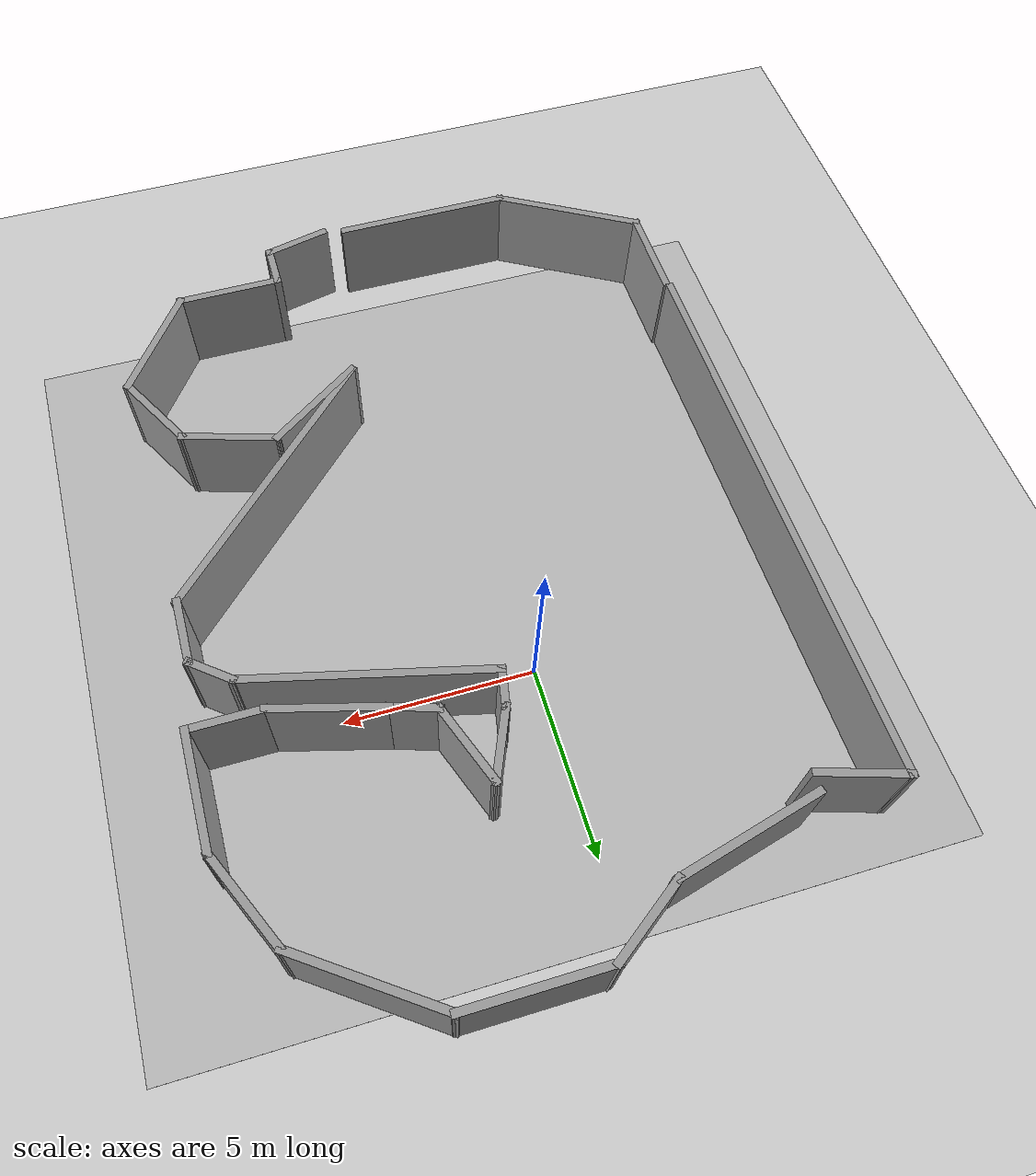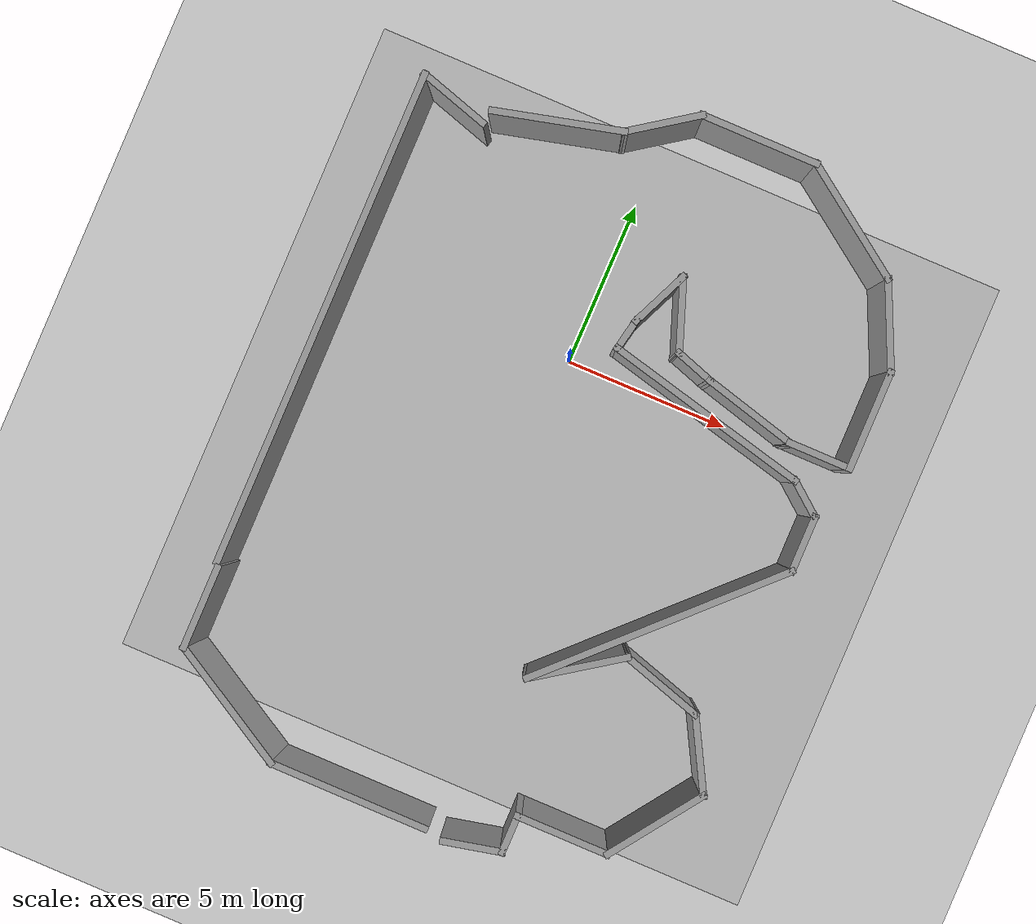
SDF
<sdf version="1.4">
 <world name="default">
  <model name="ground_plane">
   <static>1</static>
   <link name="link">
    <collision name="collision">
     <geometry>
      <plane><normal>0.000000 0.000000 1.000000</normal><size>100.000000 100.000000</size></plane>
     </geometry>
     <surface><friction><ode><mu>100.000000</mu><mu2>50.000000</mu2></ode></friction></surface>
    </collision>
    <visual name="visual">
     <cast_shadows>0</cast_shadows>
     <geometry>
      <plane><normal>0.000000 0.000000 1.000000</normal><size>100.000000 100.000000</size></plane>
     </geometry>
     <material>
      <script><uri>file://media/materials/scripts/gazebo.material</uri><name>Gazebo/Grey</name></script>
     </material>
    </visual>
    <velocity_decay><linear>0.000000</linear><angular>0.000000</angular></velocity_decay>
   </link>
  </model>
  <light name="sun" type="directional">
   <pose>0.000000 0.000000 10.000000 0.000000 0.000000 0.000000</pose>
   <diffuse>0.800000 0.800000 0.800000 1.000000</diffuse>
   <specular>0.100000 0.100000 0.100000 1.000000</specular>
   <attenuation>
    <range>1000.000000</range>
    <constant>0.900000</constant>
    <linear>0.010000</linear>
    <quadratic>0.001000</quadratic>
   </attenuation>
   <direction>-0.500000 0.500000 -1.000000</direction>
  </light>
  <physics type="ode">
   <max_step_size>0.001000</max_step_size>
   <real_time_factor>1.000000</real_time_factor>
   <real_time_update_rate>1000.000000</real_time_update_rate>
   <gravity>0.000000 0.000000 -9.800000</gravity>
   <max_contacts>20</max_contacts>
  </physics>
  <scene>
   <ambient>0.200000 0.200000 0.200000 1.000000</ambient>
   <background>0.700000 0.700000 0.700000 1.000000</background>
   <shadows>1</shadows>
  </scene>
  <model name="CircuitoMontmelo">
   <static>1</static>
   <link name="link">
    <collision name="collision">
     <geometry><box><size>20.000000 20.000000 0.010000</size></box></geometry>
    </collision>
    <visual name="visual">
     <cast_shadows>0</cast_shadows>
     <geometry><box><size>20.000000 20.000000 0.010000</size></box></geometry>
     <material>
      <script>
       <uri>model://circuitoMontmelo/materials/scripts</uri>
       <uri>model://circuitoMontmelo/materials/textures</uri>
       <name>floor</name>
      </script>
     </material>
    </visual>
    <velocity_decay><linear>0.000000</linear><angular>0.000000</angular></velocity_decay>
   </link>
   <pose>1.000000 -3.000000 0.000000 0.000000 0.000000 0.000000</pose>
  </model>
  <model name="BuildingDefaultName">
   <link name="Wall_11">
    <collision name="Wall_11_Collision">
     <geometry><box><size>2.645960 0.200000 2.500000</size></box></geometry>
     <pose>0.000000 0.000000 1.250000 0.000000 0.000000 0.000000</pose>
    </collision>
    <visual name="Wall_11_Visual">
     <pose>0.000000 0.000000 1.250000 0.000000 0.000000 0.000000</pose>
     <geometry><box><size>2.645960 0.200000 2.500000</size></box></geometry>
     <material>
      <script><uri>file://media/materials/scripts/gazebo.material</uri><name>Gazebo/Grey</name></script>
     </material>
    </visual>
    <velocity_decay><linear>0.000000</linear><angular>0.000000</angular></velocity_decay>
    <pose>-6.823280 -10.652200 0.000000 0.000000 0.000000 -1.570800</pose>
   </link>
   <link name="Wall_12">
    <collision name="Wall_12_Collision">
     <geometry><box><size>4.300630 0.200000 2.500000</size></box></geometry>
     <pose>0.000000 0.000000 1.250000 0.000000 0.000000 0.000000</pose>
    </collision>
    <visual name="Wall_12_Visual">
     <pose>0.000000 0.000000 1.250000 0.000000 0.000000 0.000000</pose>
     <geometry><box><size>4.300630 0.200000 2.500000</size></box></geometry>
     <material>
      <script><uri>file://media/materials/scripts/gazebo.material</uri><name>Gazebo/Grey</name></script>
     </material>
    </visual>
    <velocity_decay><linear>0.000000</linear><angular>0.000000</angular></velocity_decay>
    <pose>-5.047980 -12.900900 0.000000 0.000000 0.000000 -0.523919</pose>
   </link>
   <link name="Wall_13">
    <collision name="Wall_13_Collision">
     <geometry><box><size>4.934120 0.200000 2.500000</size></box></geometry>
     <pose>0.000000 0.000000 1.250000 0.000000 0.000000 0.000000</pose>
    </collision>
    <visual name="Wall_13_Visual">
     <pose>0.000000 0.000000 1.250000 0.000000 0.000000 0.000000</pose>
     <geometry><box><size>4.934120 0.200000 2.500000</size></box></geometry>
     <material>
      <script><uri>file://media/materials/scripts/gazebo.material</uri><name>Gazebo/Grey</name></script>
     </material>
    </visual>
    <velocity_decay><linear>0.000000</linear><angular>0.000000</angular></velocity_decay>
    <pose>-0.905630 -13.926600 0.000000 0.000000 0.000000 0.000000</pose>
   </link>
   <link name="Wall_8">
    <collision name="Wall_8_Collision">
     <geometry><box><size>15.191400 0.200000 2.500000</size></box></geometry>
     <pose>0.000000 0.000000 1.250000 0.000000 0.000000 0.000000</pose>
    </collision>
    <visual name="Wall_8_Visual">
     <pose>0.000000 0.000000 1.250000 0.000000 0.000000 0.000000</pose>
     <geometry><box><size>15.191400 0.200000 2.500000</size></box></geometry>
     <material>
      <script><uri>file://media/materials/scripts/gazebo.material</uri><name>Gazebo/Grey</name></script>
     </material>
    </visual>
    <velocity_decay><linear>0.000000</linear><angular>0.000000</angular></velocity_decay>
    <pose>-6.902180 -1.775710 0.000000 0.000000 0.000000 1.570800</pose>
   </link>
   <link name="Wall_9">
    <collision name="Wall_9_Collision">
     <geometry><box><size>2.346370 0.200000 2.500000</size></box></geometry>
     <pose>0.000000 0.000000 1.250000 0.000000 0.000000 0.000000</pose>
    </collision>
    <visual name="Wall_9_Visual">
     <pose>0.000000 0.000000 1.250000 0.000000 0.000000 0.000000</pose>
     <geometry><box><size>2.346370 0.200000 2.500000</size></box></geometry>
     <material>
      <script><uri>file://media/materials/scripts/gazebo.material</uri><name>Gazebo/Grey</name></script>
     </material>
    </visual>
    <velocity_decay><linear>0.000000</linear><angular>0.000000</angular></velocity_decay>
    <pose>-5.876450 5.404360 0.000000 0.000000 0.000000 -0.298499</pose>
   </link>
   <static>1</static>
  </model>
  <model name="paredesMontmelo_0">
   <link name="Wall_100">
    <collision name="Wall_100_Collision">
     <geometry><box><size>1.861250 0.200000 2.500000</size></box></geometry>
     <pose>0.000000 0.000000 1.250000 0.000000 0.000000 0.000000</pose>
    </collision>
    <visual name="Wall_100_Visual">
     <pose>0.000000 0.000000 1.250000 0.000000 0.000000 0.000000</pose>
     <geometry><box><size>1.861250 0.200000 2.500000</size></box></geometry>
     <material>
      <script><uri>file://media/materials/scripts/gazebo.material</uri><name>Gazebo/Grey</name></script>
     </material>
    </visual>
    <velocity_decay><linear>0.000000</linear><angular>0.000000</angular></velocity_decay>
    <pose>6.167900 -2.328510 0.000000 0.000000 0.000000 -1.570800</pose>
   </link>
   <link name="Wall_101">
    <collision name="Wall_101_Collision">
     <geometry><box><size>8.292260 0.200000 2.500000</size></box></geometry>
     <pose>0.000000 0.000000 1.250000 0.000000 0.000000 0.000000</pose>
    </collision>
    <visual name="Wall_101_Visual">
     <pose>0.000000 0.000000 1.250000 0.000000 0.000000 0.000000</pose>
     <geometry><box><size>8.292260 0.200000 2.500000</size></box></geometry>
     <material>
      <script><uri>file://media/materials/scripts/gazebo.material</uri><name>Gazebo/Grey</name></script>
     </material>
    </visual>
    <velocity_decay><linear>0.000000</linear><angular>0.000000</angular></velocity_decay>
    <pose>3.306850 -6.020180 0.000000 0.000000 0.000000 -2.356190</pose>
   </link>
   <link name="Wall_102">
    <collision name="Wall_102_Collision">
     <geometry><box><size>3.118520 0.200000 2.500000</size></box></geometry>
     <pose>0.000000 0.000000 1.250000 0.000000 0.000000 0.000000</pose>
    </collision>
    <visual name="Wall_102_Visual">
     <pose>0.000000 0.000000 1.250000 0.000000 0.000000 0.000000</pose>
     <geometry><box><size>3.118520 0.200000 2.500000</size></box></geometry>
     <material>
      <script><uri>file://media/materials/scripts/gazebo.material</uri><name>Gazebo/Grey</name></script>
     </material>
    </visual>
    <velocity_decay><linear>0.000000</linear><angular>0.000000</angular></velocity_decay>
    <pose>1.645600 -8.050600 0.000000 0.000000 0.000000 0.605545</pose>
   </link>
   <link name="Wall_103">
    <collision name="Wall_103_Collision">
     <geometry><box><size>2.710610 0.200000 2.500000</size></box></geometry>
     <pose>0.000000 0.000000 1.250000 0.000000 0.000000 0.000000</pose>
    </collision>
    <visual name="Wall_103_Visual">
     <pose>0.000000 0.000000 1.250000 0.000000 0.000000 0.000000</pose>
     <geometry><box><size>2.710610 0.200000 2.500000</size></box></geometry>
     <material>
      <script><uri>file://media/materials/scripts/gazebo.material</uri><name>Gazebo/Grey</name></script>
     </material>
    </visual>
    <velocity_decay><linear>0.000000</linear><angular>0.000000</angular></velocity_decay>
    <pose>4.045190 -7.589140 0.000000 0.000000 0.000000 -0.298499</pose>
   </link>
   <link name="Wall_104">
    <collision name="Wall_104_Collision">
     <geometry><box><size>2.512830 0.200000 2.500000</size></box></geometry>
     <pose>0.000000 0.000000 1.250000 0.000000 0.000000 0.000000</pose>
    </collision>
    <visual name="Wall_104_Visual">
     <pose>0.000000 0.000000 1.250000 0.000000 0.000000 0.000000</pose>
     <geometry><box><size>2.512830 0.200000 2.500000</size></box></geometry>
     <material>
      <script><uri>file://media/materials/scripts/gazebo.material</uri><name>Gazebo/Grey</name></script>
     </material>
    </visual>
    <velocity_decay><linear>0.000000</linear><angular>0.000000</angular></velocity_decay>
    <pose>5.798730 -8.973520 0.000000 0.000000 0.000000 -1.071450</pose>
   </link>
   <link name="Wall_105">
    <collision name="Wall_105_Collision">
     <geometry><box><size>3.375700 0.200000 2.500000</size></box></geometry>
     <pose>0.000000 0.000000 1.250000 0.000000 0.000000 0.000000</pose>
    </collision>
    <visual name="Wall_105_Visual">
     <pose>0.000000 0.000000 1.250000 0.000000 0.000000 0.000000</pose>
     <geometry><box><size>3.375700 0.200000 2.500000</size></box></geometry>
     <material>
      <script><uri>file://media/materials/scripts/gazebo.material</uri><name>Gazebo/Grey</name></script>
     </material>
    </visual>
    <velocity_decay><linear>0.000000</linear><angular>0.000000</angular></velocity_decay>
    <pose>5.429570 -11.280800 0.000000 0.000000 0.000000 -2.191050</pose>
   </link>
   <link name="Wall_106">
    <collision name="Wall_106_Collision">
     <geometry><box><size>2.968750 0.200000 2.500000</size></box></geometry>
     <pose>0.000000 0.000000 1.250000 0.000000 0.000000 0.000000</pose>
    </collision>
    <visual name="Wall_106_Visual">
     <pose>0.000000 0.000000 1.250000 0.000000 0.000000 0.000000</pose>
     <geometry><box><size>2.968750 0.200000 2.500000</size></box></geometry>
     <material>
      <script><uri>file://media/materials/scripts/gazebo.material</uri><name>Gazebo/Grey</name></script>
     </material>
    </visual>
    <velocity_decay><linear>0.000000</linear><angular>0.000000</angular></velocity_decay>
    <pose>3.122270 -12.572900 0.000000 0.000000 0.000000 3.141590</pose>
   </link>
   <link name="Wall_107">
    <collision name="Wall_107_Collision">
     <geometry><box><size>1.307500 0.200000 2.500000</size></box></geometry>
     <pose>0.000000 0.000000 1.250000 0.000000 0.000000 0.000000</pose>
    </collision>
    <visual name="Wall_107_Visual">
     <pose>0.000000 0.000000 1.250000 0.000000 0.000000 0.000000</pose>
     <geometry><box><size>1.307500 0.200000 2.500000</size></box></geometry>
     <material>
      <script><uri>file://media/materials/scripts/gazebo.material</uri><name>Gazebo/Grey</name></script>
     </material>
    </visual>
    <velocity_decay><linear>0.000000</linear><angular>0.000000</angular></velocity_decay>
    <pose>1.737890 -13.126600 0.000000 0.000000 0.000000 -1.570800</pose>
   </link>
   <link name="Wall_108">
    <collision name="Wall_108_Collision">
     <geometry><box><size>1.901780 0.200000 2.500000</size></box></geometry>
     <pose>0.000000 0.000000 1.250000 0.000000 0.000000 0.000000</pose>
    </collision>
    <visual name="Wall_108_Visual">
     <pose>0.000000 0.000000 1.250000 0.000000 0.000000 0.000000</pose>
     <geometry><box><size>1.901780 0.200000 2.500000</size></box></geometry>
     <material>
      <script><uri>file://media/materials/scripts/gazebo.material</uri><name>Gazebo/Grey</name></script>
     </material>
    </visual>
    <velocity_decay><linear>0.000000</linear><angular>0.000000</angular></velocity_decay>
    <pose>0.907267 -13.865000 0.000000 0.000000 0.000000 -2.922920</pose>
   </link>
   <link name="Wall_86">
    <collision name="Wall_86_Collision">
     <geometry><box><size>4.005290 0.200000 2.500000</size></box></geometry>
     <pose>0.000000 0.000000 1.250000 0.000000 0.000000 0.000000</pose>
    </collision>
    <visual name="Wall_86_Visual">
     <pose>0.000000 0.000000 1.250000 0.000000 0.000000 0.000000</pose>
     <geometry><box><size>4.005290 0.200000 2.500000</size></box></geometry>
     <material>
      <script><uri>file://media/materials/scripts/gazebo.material</uri><name>Gazebo/Grey</name></script>
     </material>
    </visual>
    <velocity_decay><linear>0.000000</linear><angular>0.000000</angular></velocity_decay>
    <pose>-4.907120 5.977760 0.000000 0.000000 0.000000 0.244979</pose>
   </link>
   <link name="Wall_87">
    <collision name="Wall_87_Collision">
     <geometry><box><size>2.453130 0.200000 2.500000</size></box></geometry>
     <pose>0.000000 0.000000 1.250000 0.000000 0.000000 0.000000</pose>
    </collision>
    <visual name="Wall_87_Visual">
     <pose>0.000000 0.000000 1.250000 0.000000 0.000000 0.000000</pose>
     <geometry><box><size>2.453130 0.200000 2.500000</size></box></geometry>
     <material>
      <script><uri>file://media/materials/scripts/gazebo.material</uri><name>Gazebo/Grey</name></script>
     </material>
    </visual>
    <velocity_decay><linear>0.000000</linear><angular>0.000000</angular></velocity_decay>
    <pose>-2.138360 7.085260 0.000000 0.000000 0.000000 0.610726</pose>
   </link>
   <link name="Wall_88">
    <collision name="Wall_88_Collision">
     <geometry><box><size>3.707090 0.200000 2.500000</size></box></geometry>
     <pose>0.000000 0.000000 1.250000 0.000000 0.000000 0.000000</pose>
    </collision>
    <visual name="Wall_88_Visual">
     <pose>0.000000 0.000000 1.250000 0.000000 0.000000 0.000000</pose>
     <geometry><box><size>3.707090 0.200000 2.500000</size></box></geometry>
     <material>
      <script><uri>file://media/materials/scripts/gazebo.material</uri><name>Gazebo/Grey</name></script>
     </material>
    </visual>
    <velocity_decay><linear>0.000000</linear><angular>0.000000</angular></velocity_decay>
    <pose>0.538099 7.731300 0.000000 0.000000 0.000000 0.000000</pose>
   </link>
   <link name="Wall_89">
    <collision name="Wall_89_Collision">
     <geometry><box><size>4.040940 0.200000 2.500000</size></box></geometry>
     <pose>0.000000 0.000000 1.250000 0.000000 0.000000 0.000000</pose>
    </collision>
    <visual name="Wall_89_Visual">
     <pose>0.000000 0.000000 1.250000 0.000000 0.000000 0.000000</pose>
     <geometry><box><size>4.040940 0.200000 2.500000</size></box></geometry>
     <material>
      <script><uri>file://media/materials/scripts/gazebo.material</uri><name>Gazebo/Grey</name></script>
     </material>
    </visual>
    <velocity_decay><linear>0.000000</linear><angular>0.000000</angular></velocity_decay>
    <pose>3.860610 6.623800 0.000000 0.000000 0.000000 -0.614663</pose>
   </link>
   <link name="Wall_90">
    <collision name="Wall_90_Collision">
     <geometry><box><size>2.842840 0.200000 2.500000</size></box></geometry>
     <pose>0.000000 0.000000 1.250000 0.000000 0.000000 0.000000</pose>
    </collision>
    <visual name="Wall_90_Visual">
     <pose>0.000000 0.000000 1.250000 0.000000 0.000000 0.000000</pose>
     <geometry><box><size>2.842840 0.200000 2.500000</size></box></geometry>
     <material>
      <script><uri>file://media/materials/scripts/gazebo.material</uri><name>Gazebo/Grey</name></script>
     </material>
    </visual>
    <velocity_decay><linear>0.000000</linear><angular>0.000000</angular></velocity_decay>
    <pose>5.983320 4.316510 0.000000 0.000000 0.000000 -1.138390</pose>
   </link>
   <link name="Wall_91">
    <collision name="Wall_91_Collision">
     <geometry><box><size>3.153340 0.200000 2.500000</size></box></geometry>
     <pose>0.000000 0.000000 1.250000 0.000000 0.000000 0.000000</pose>
    </collision>
    <visual name="Wall_91_Visual">
     <pose>0.000000 0.000000 1.250000 0.000000 0.000000 0.000000</pose>
     <geometry><box><size>3.153340 0.200000 2.500000</size></box></geometry>
     <material>
      <script><uri>file://media/materials/scripts/gazebo.material</uri><name>Gazebo/Grey</name></script>
     </material>
    </visual>
    <velocity_decay><linear>0.000000</linear><angular>0.000000</angular></velocity_decay>
    <pose>6.537070 1.640040 0.000000 0.000000 0.000000 -1.570800</pose>
   </link>
   <link name="Wall_92">
    <collision name="Wall_92_Collision">
     <geometry><box><size>2.045840 0.200000 2.500000</size></box></geometry>
     <pose>0.000000 0.000000 1.250000 0.000000 0.000000 0.000000</pose>
    </collision>
    <visual name="Wall_92_Visual">
     <pose>0.000000 0.000000 1.250000 0.000000 0.000000 0.000000</pose>
     <geometry><box><size>2.045840 0.200000 2.500000</size></box></geometry>
     <material>
      <script><uri>file://media/materials/scripts/gazebo.material</uri><name>Gazebo/Grey</name></script>
     </material>
    </visual>
    <velocity_decay><linear>0.000000</linear><angular>0.000000</angular></velocity_decay>
    <pose>5.614150 0.163373 0.000000 0.000000 0.000000 3.141590</pose>
   </link>
   <link name="Wall_93">
    <collision name="Wall_93_Collision">
     <geometry><box><size>3.065510 0.200000 2.500000</size></box></geometry>
     <pose>0.000000 0.000000 1.250000 0.000000 0.000000 0.000000</pose>
    </collision>
    <visual name="Wall_93_Visual">
     <pose>0.000000 0.000000 1.250000 0.000000 0.000000 0.000000</pose>
     <geometry><box><size>3.065510 0.200000 2.500000</size></box></geometry>
     <material>
      <script><uri>file://media/materials/scripts/gazebo.material</uri><name>Gazebo/Grey</name></script>
     </material>
    </visual>
    <velocity_decay><linear>0.000000</linear><angular>0.000000</angular></velocity_decay>
    <pose>3.306850 0.532541 0.000000 0.000000 0.000000 2.880990</pose>
   </link>
   <link name="Wall_94">
    <collision name="Wall_94_Collision">
     <geometry><box><size>1.367410 0.200000 2.500000</size></box></geometry>
     <pose>0.000000 0.000000 1.250000 0.000000 0.000000 0.000000</pose>
    </collision>
    <visual name="Wall_94_Visual">
     <pose>0.000000 0.000000 1.250000 0.000000 0.000000 0.000000</pose>
     <geometry><box><size>1.367410 0.200000 2.500000</size></box></geometry>
     <material>
      <script><uri>file://media/materials/scripts/gazebo.material</uri><name>Gazebo/Grey</name></script>
     </material>
    </visual>
    <velocity_decay><linear>0.000000</linear><angular>0.000000</angular></velocity_decay>
    <pose>1.368730 1.086290 0.000000 0.000000 0.000000 2.819840</pose>
   </link>
   <link name="Wall_95">
    <collision name="Wall_95_Collision">
     <geometry><box><size>2.360500 0.200000 2.500000</size></box></geometry>
     <pose>0.000000 0.000000 1.250000 0.000000 0.000000 0.000000</pose>
    </collision>
    <visual name="Wall_95_Visual">
     <pose>0.000000 0.000000 1.250000 0.000000 0.000000 0.000000</pose>
     <geometry><box><size>2.360500 0.200000 2.500000</size></box></geometry>
     <material>
      <script><uri>file://media/materials/scripts/gazebo.material</uri><name>Gazebo/Grey</name></script>
     </material>
    </visual>
    <velocity_decay><linear>0.000000</linear><angular>0.000000</angular></velocity_decay>
    <pose>0.445808 2.286080 0.000000 0.000000 0.000000 1.919570</pose>
   </link>
   <link name="Wall_96">
    <collision name="Wall_96_Collision">
     <geometry><box><size>2.017940 0.200000 2.500000</size></box></geometry>
     <pose>0.000000 0.000000 1.250000 0.000000 0.000000 0.000000</pose>
    </collision>
    <visual name="Wall_96_Visual">
     <pose>0.000000 0.000000 1.250000 0.000000 0.000000 0.000000</pose>
     <geometry><box><size>2.017940 0.200000 2.500000</size></box></geometry>
     <material>
      <script><uri>file://media/materials/scripts/gazebo.material</uri><name>Gazebo/Grey</name></script>
     </material>
    </visual>
    <velocity_decay><linear>0.000000</linear><angular>0.000000</angular></velocity_decay>
    <pose>-0.292527 2.470670 0.000000 0.000000 0.000000 -1.989020</pose>
   </link>
   <link name="Wall_97">
    <collision name="Wall_97_Collision">
     <geometry><box><size>1.141200 0.200000 2.500000</size></box></geometry>
     <pose>0.000000 0.000000 1.250000 0.000000 0.000000 0.000000</pose>
    </collision>
    <visual name="Wall_97_Visual">
     <pose>0.000000 0.000000 1.250000 0.000000 0.000000 0.000000</pose>
     <geometry><box><size>1.141200 0.200000 2.500000</size></box></geometry>
     <material>
      <script><uri>file://media/materials/scripts/gazebo.material</uri><name>Gazebo/Grey</name></script>
     </material>
    </visual>
    <velocity_decay><linear>0.000000</linear><angular>0.000000</angular></velocity_decay>
    <pose>-0.753986 1.178580 0.000000 0.000000 0.000000 -1.768190</pose>
   </link>
   <link name="Wall_98">
    <collision name="Wall_98_Collision">
     <geometry><box><size>6.467690 0.200000 2.500000</size></box></geometry>
     <pose>0.000000 0.000000 1.250000 0.000000 0.000000 0.000000</pose>
    </collision>
    <visual name="Wall_98_Visual">
     <pose>0.000000 0.000000 1.250000 0.000000 0.000000 0.000000</pose>
     <geometry><box><size>6.467690 0.200000 2.500000</size></box></geometry>
     <material>
      <script><uri>file://media/materials/scripts/gazebo.material</uri><name>Gazebo/Grey</name></script>
     </material>
    </visual>
    <velocity_decay><linear>0.000000</linear><angular>0.000000</angular></velocity_decay>
    <pose>2.199350 -0.021210 0.000000 0.000000 0.000000 -0.237836</pose>
   </link>
   <link name="Wall_99">
    <collision name="Wall_99_Collision">
     <geometry><box><size>1.381910 0.200000 2.500000</size></box></geometry>
     <pose>0.000000 0.000000 1.250000 0.000000 0.000000 0.000000</pose>
    </collision>
    <visual name="Wall_99_Visual">
     <pose>0.000000 0.000000 1.250000 0.000000 0.000000 0.000000</pose>
     <geometry><box><size>1.381910 0.200000 2.500000</size></box></geometry>
     <material>
      <script><uri>file://media/materials/scripts/gazebo.material</uri><name>Gazebo/Grey</name></script>
     </material>
    </visual>
    <velocity_decay><linear>0.000000</linear><angular>0.000000</angular></velocity_decay>
    <pose>5.706440 -1.128710 0.000000 0.000000 0.000000 -0.674741</pose>
   </link>
   <static>1</static>
   <pose>2.000000 0.000000 0.000000 0.000000 0.000000 0.000000</pose>
  </model>
 </world>
</sdf>
